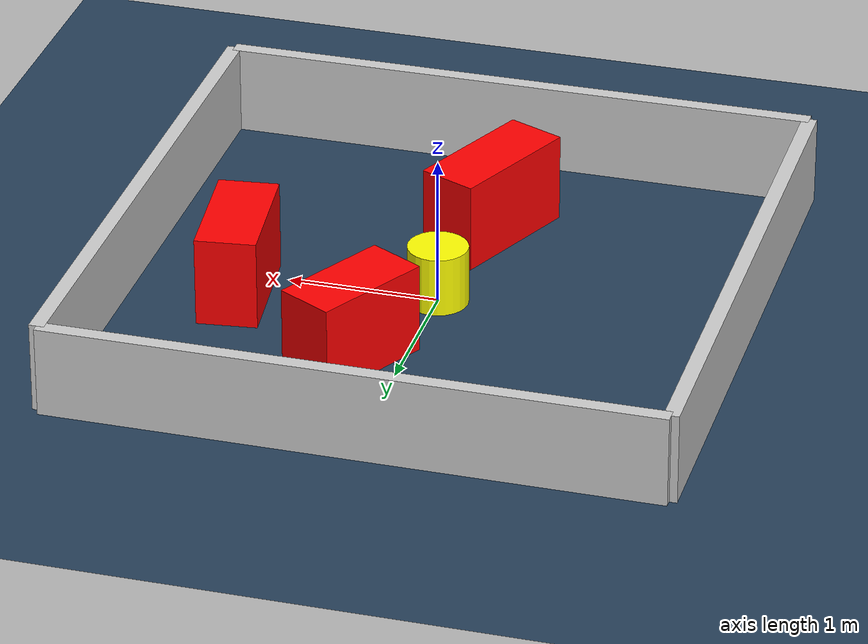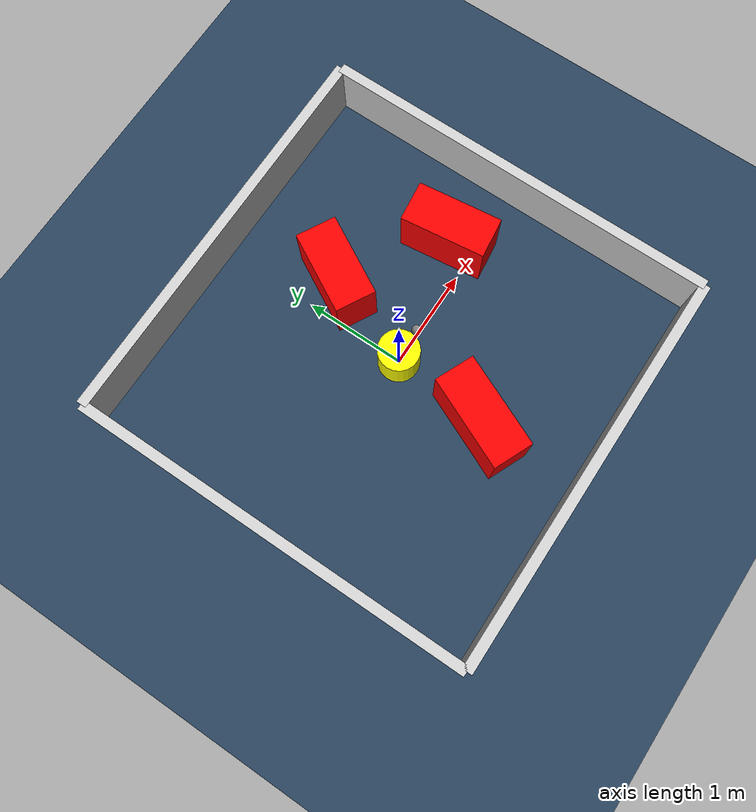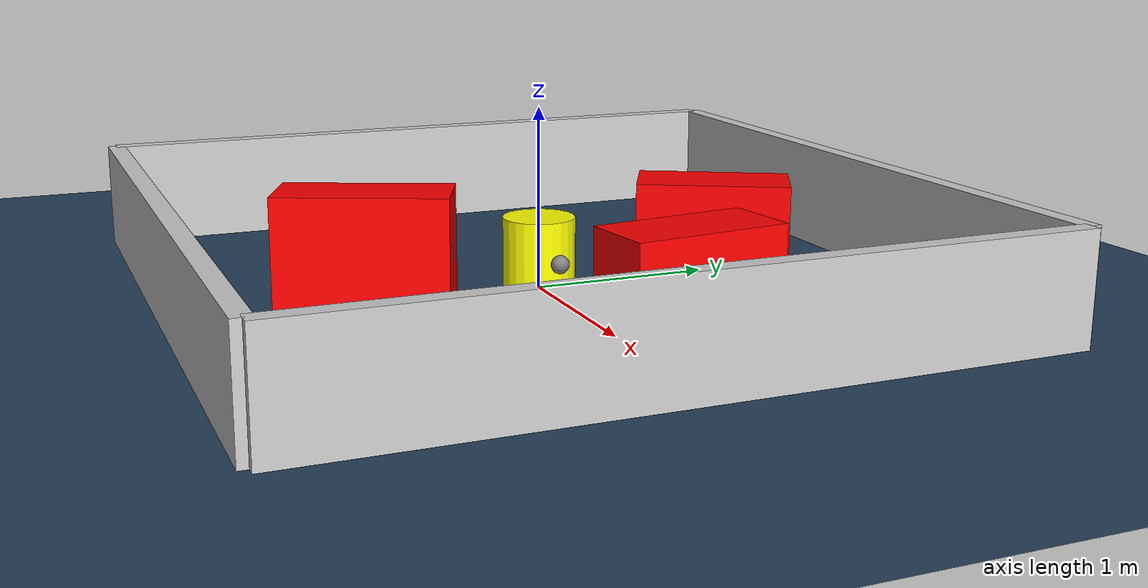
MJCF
<?xml version="1.0" ?>
<mujoco model="generated_environment">
  <option timestep="0.01" integrator="RK4" cone="elliptic"/>
  <default>
    <geom density="1"/>
  </default>
  <asset>
    <texture builtin="gradient" height="3072" rgb1="0.3 0.5 0.7" rgb2="0 0 0" type="skybox" width="512"/>
    <texture builtin="checker" height="300" mark="edge" markrgb="0.8 0.8 0.8" name="groundplane" rgb1="0.2 0.3 0.4" rgb2="0.1 0.2 0.3" type="2d" width="300"/>
    <material name="groundplane" reflectance="0.2" texrepeat="5 5" texture="groundplane" texuniform="true"/>
    <material name="robot" rgba="0.0 1.0 0.0 1"/>
  </asset>
  <worldbody>
    <light dir="0 0 -1" directional="true" pos="0 0 1.5"/>
    <geom condim="4" friction="1.0 0.005 0.001" material="groundplane" name="floor" size="0 0 0.05" type="plane"/>
    <body name="walls">
      <geom name="wall_1" condim="4" pos="-2.0 0.0 0.3" rgba="0.800000011920929 0.800000011920929 0.800000011920929 1.0" size="0.05 2.0 0.3" type="box"/>
      <geom name="wall_2" condim="4" pos="2.0 0.0 0.3" rgba="0.800000011920929 0.800000011920929 0.800000011920929 1.0" size="0.05 2.0 0.3" type="box"/>
      <geom name="wall_3" condim="4" pos="0.0 -2.0 0.3" rgba="0.800000011920929 0.800000011920929 0.800000011920929 1.0" size="2.0 0.05 0.3" type="box"/>
      <geom name="wall_4" condim="4" pos="0.0 2.0 0.3" rgba="0.800000011920929 0.800000011920929 0.800000011920929 1.0" size="2.0 0.05 0.3" type="box"/>
    </body>
    <body name="robot">
      <joint name="joint_x" type="slide" pos="0 0 0" axis="1 0 0"/>
      <joint name="joint_y" type="slide" pos="0 0 0" axis="0 1 0"/>
      <geom name="robot" type="sphere" pos="0.3 0.0 0.2" size="0.05" mass="5." friction="1.0 0.005 0.0001" condim="4" rgba="0.5 0.5 0.5 1.0"/>
      <site name="sensor_ball"/>
    </body>
    <body name="obstacle_movable_1">
      <geom name="obstacle_movable_1" condim="4" pos="0.0 0.0 0.2" euler="0 0 0.0" friction="1.0 0.005 0.001" rgba="1.0 1.0 0.0 1.0" size="0.2 0.2 0.0" type="cylinder" mass="0.1"/>
      <joint type="free"/>
    </body>
    <body name="obstacle_2_static">
      <geom name="obstacle_2_static" condim="4" pos="-0.09992264718253119 -0.9541307128116863 0.3" euler="0 0 246.27427619687688" friction="1.0 0.005 0.001" rgba="1 0 0 1" size="0.46791354313890743 0.2 0.3" type="box"/>
    </body>
    <body name="obstacle_3_static">
      <geom name="obstacle_3_static" condim="4" pos="0.3136537904681229 0.901986654295065 0.3" euler="0 0 241.30595018021685" friction="1.0 0.005 0.001" rgba="1 0 0 1" size="0.4108983093706274 0.2 0.3" type="box"/>
    </body>
    <body name="obstacle_4_static">
      <geom name="obstacle_4_static" condim="4" pos="1.262136136571592 0.2633342128088334 0.3" euler="0 0 96.98293381830219" friction="1.0 0.005 0.001" rgba="1 0 0 1" size="0.41863954395855685 0.2 0.3" type="box"/>
    </body>
  </worldbody>
  <actuator>
    <motor name="actuator_x" joint="joint_x" gear="1" ctrlrange="-1 1"/>
    <motor name="actuator_y" joint="joint_y" gear="1" ctrlrange="-1 1"/>
  </actuator>
</mujoco>
